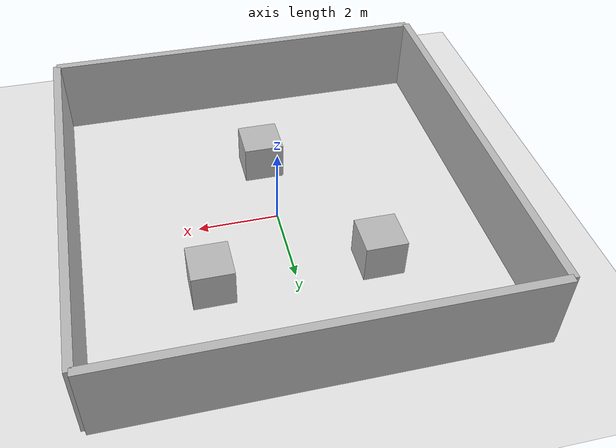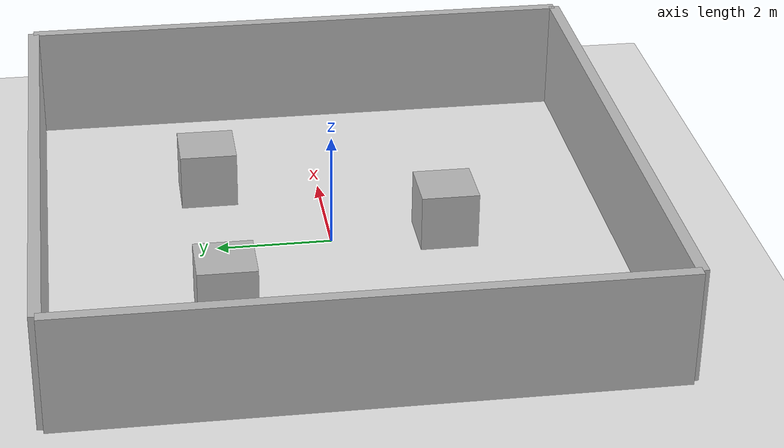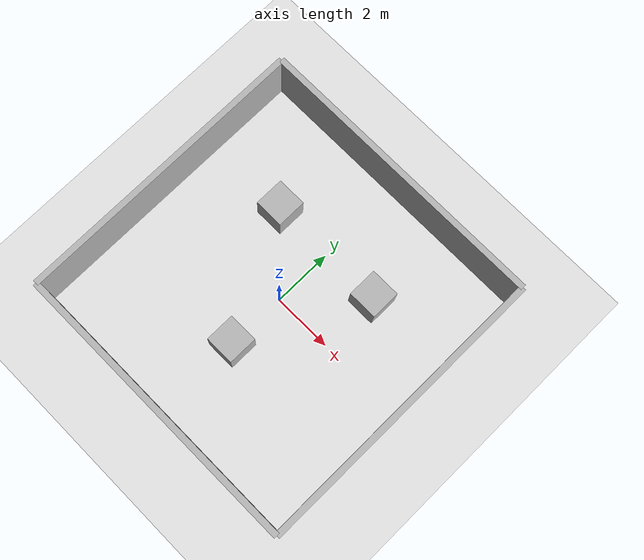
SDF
<?xml version="1.0" ?>
<sdf version="1.9">

  <world name="slam_world">

    <gravity>0 0 -9.8</gravity>

    <scene>
      <ambient>0.6 0.6 0.6 1</ambient>
      <background>0.9 0.9 0.9 1</background>
    </scene>

    <physics name="default" type="ode">
      <max_step_size>0.004</max_step_size>
      <real_time_factor>1.0</real_time_factor>
      <real_time_update_rate>250</real_time_update_rate>
      <ode>
        <solver>
          <type>quick</type>
          <iters>50</iters>
          <sor>1.3</sor>
        </solver>
        <constraints>
          <cfm>0.0</cfm>
          <erp>0.2</erp>
          <contact_max_correcting_vel>100.0</contact_max_correcting_vel>
          <contact_surface_layer>0.001</contact_surface_layer>
        </constraints>
      </ode>
    </physics>

    <!-- Sun -->
    <light type="directional" name="sun">
      <cast_shadows>true</cast_shadows>
      <pose>0 0 10 0 0 0</pose>
      <diffuse>1 1 1 1</diffuse>
      <specular>0.5 0.5 0.5 1</specular>
      <attenuation>
        <range>1000</range>
        <constant>0.9</constant>
        <linear>0.01</linear>
        <quadratic>0.001</quadratic>
      </attenuation>
      <direction>-0.5 0.1 -0.9</direction>
    </light>

    <!-- Ground -->
    <model name="ground">
      <static>true</static>
      <link name="link">
        <collision name="collision">
          <geometry>
            <plane>
              <normal>0 0 1</normal>
              <size>50 50</size>
            </plane>
          </geometry>
        </collision>
        <visual name="visual">
          <geometry>
            <plane>
              <normal>0 0 1</normal>
              <size>50 50</size>
            </plane>
          </geometry>
          <material>
            <ambient>0.9 0.9 0.9 1</ambient>
            <diffuse>0.9 0.9 0.9 1</diffuse>
          </material>
        </visual>
      </link>
    </model>

    <!-- WALLS -->

    <model name="wall1">
      <static>true</static>
      <pose>5 0 1 0 0 0</pose>
      <link name="link">
        <collision name="collision">
          <geometry>
            <box>
              <size>0.2 10 2</size>
            </box>
          </geometry>
        </collision>
        <visual name="visual">
          <geometry>
            <box>
              <size>0.2 10 2</size>
            </box>
          </geometry>
        </visual>
      </link>
    </model>

    <model name="wall2">
      <static>true</static>
      <pose>-5 0 1 0 0 0</pose>
      <link name="link">
        <collision name="collision">
          <geometry>
            <box>
              <size>0.2 10 2</size>
            </box>
          </geometry>
        </collision>
        <visual name="visual">
          <geometry>
            <box>
              <size>0.2 10 2</size>
            </box>
          </geometry>
        </visual>
      </link>
    </model>

    <model name="wall3">
      <static>true</static>
      <pose>0 5 1 0 0 0</pose>
      <link name="link">
        <collision name="collision">
          <geometry>
            <box>
              <size>10 0.2 2</size>
            </box>
          </geometry>
        </collision>
        <visual name="visual">
          <geometry>
            <box>
              <size>10 0.2 2</size>
            </box>
          </geometry>
        </visual>
      </link>
    </model>

    <model name="wall4">
      <static>true</static>
      <pose>0 -5 1 0 0 0</pose>
      <link name="link">
        <collision name="collision">
          <geometry>
            <box>
              <size>10 0.2 2</size>
            </box>
          </geometry>
        </collision>
        <visual name="visual">
          <geometry>
            <box>
              <size>10 0.2 2</size>
            </box>
          </geometry>
        </visual>
      </link>
    </model>

    <!-- BOXES -->

    <model name="box1">
      <static>true</static>
      <pose>2 2 0.5 0 0 0</pose>
      <link name="link">
        <collision name="collision">
          <geometry>
            <box>
              <size>1 1 1</size>
            </box>
          </geometry>
        </collision>
        <visual name="visual">
          <geometry>
            <box>
              <size>1 1 1</size>
            </box>
          </geometry>
        </visual>
      </link>
    </model>

    <model name="box2">
      <static>true</static>
      <pose>-2 2 0.5 0 0 0</pose>
      <link name="link">
        <collision name="collision">
          <geometry>
            <box>
              <size>1 1 1</size>
            </box>
          </geometry>
        </collision>
        <visual name="visual">
          <geometry>
            <box>
              <size>1 1 1</size>
            </box>
          </geometry>
        </visual>
      </link>
    </model>

    <model name="box3">
      <static>true</static>
      <pose>0 -2 0.5 0 0 0</pose>
      <link name="link">
        <collision name="collision">
          <geometry>
            <box>
              <size>1 1 1</size>
            </box>
          </geometry>
        </collision>
        <visual name="visual">
          <geometry>
            <box>
              <size>1 1 1</size>
            </box>
          </geometry>
        </visual>
      </link>
    </model>

    <plugin filename="gz-sim-physics-system"
            name="gz::sim::systems::Physics">
    </plugin>
    <plugin filename="gz-sim-user-commands-system"
            name="gz::sim::systems::UserCommands">
    </plugin>
    <plugin filename="gz-sim-scene-broadcaster-system"
            name="gz::sim::systems::SceneBroadcaster">
    </plugin>

  </world>

</sdf>
